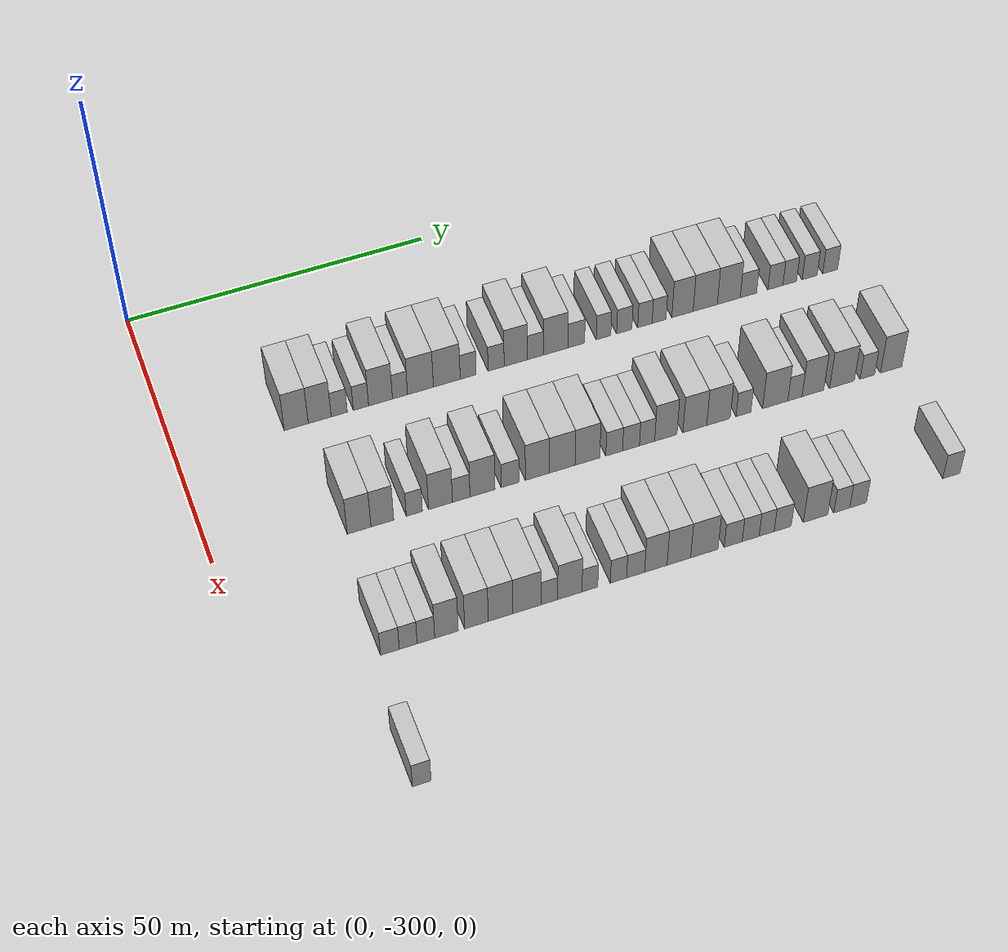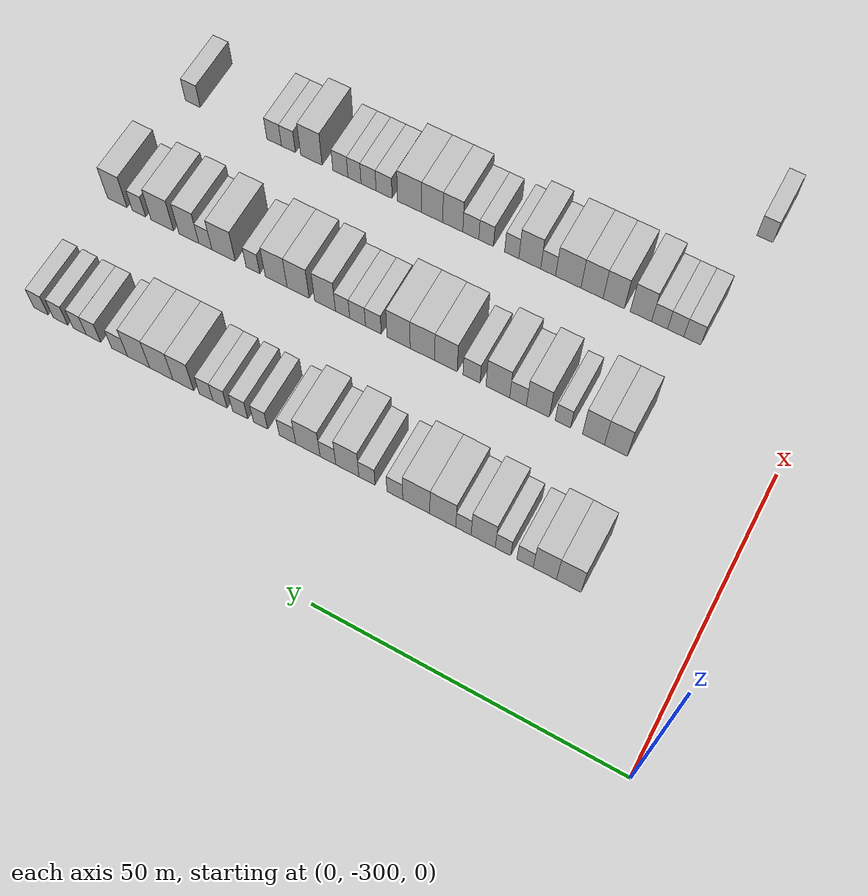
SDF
<sdf version="1.6">
 <world name="default">
  <model name="building_25">
   <static>1</static>
   <pose>25.0000 -280.7418 0 0.000000 0.000000 0.000000</pose>
   <link name="link">
    <pose>0 0 4.50 0 0 0</pose>
    <collision name="collision"><geometry><box><size>10.0000 3.9124 9.0000</size></box></geometry></collision>
    <visual name="visual">
     <cast_shadows>0</cast_shadows>
     <geometry><box><size>10.0000 3.9124 9.0000</size></box></geometry>
     <material>
      <script>
       <uri>model://HANNAS_wall/materials/scripts</uri>
       <uri>model://HANNAS_wall/materials/textures</uri>
       <name>vrc/HANNAS_wall</name>
      </script>
     </material>
    </visual>
   </link>
  </model>
  <model name="building_26">
   <static>1</static>
   <pose>25.0000 -276.9151 0 0.000000 0.000000 0.000000</pose>
   <link name="link">
    <pose>0 0 4.50 0 0 0</pose>
    <collision name="collision"><geometry><box><size>10.0000 3.7411 9.0000</size></box></geometry></collision>
    <visual name="visual">
     <cast_shadows>0</cast_shadows>
     <geometry><box><size>10.0000 3.7411 9.0000</size></box></geometry>
     <material>
      <script>
       <uri>model://HANNAS_wall/materials/scripts</uri>
       <uri>model://HANNAS_wall/materials/textures</uri>
       <name>vrc/HANNAS_wall</name>
      </script>
     </material>
    </visual>
   </link>
  </model>
  <model name="building_27">
   <static>1</static>
   <pose>25.0000 -273.7296 0 0.000000 0.000000 0.000000</pose>
   <link name="link">
    <pose>0 0 3.00 0 0 0</pose>
    <collision name="collision"><geometry><box><size>10.0000 2.6299 6.0000</size></box></geometry></collision>
    <visual name="visual">
     <cast_shadows>0</cast_shadows>
     <geometry><box><size>10.0000 2.6299 6.0000</size></box></geometry>
     <material>
      <script>
       <uri>model://HANNAS_wall/materials/scripts</uri>
       <uri>model://HANNAS_wall/materials/textures</uri>
       <name>vrc/HANNAS_wall</name>
      </script>
     </material>
    </visual>
   </link>
  </model>
  <model name="building_28">
   <static>1</static>
   <pose>25.0000 -270.1575 0 0.000000 0.000000 0.000000</pose>
   <link name="link">
    <pose>0 0 3.00 0 0 0</pose>
    <collision name="collision"><geometry><box><size>10.0000 2.5143 6.0000</size></box></geometry></collision>
    <visual name="visual">
     <cast_shadows>0</cast_shadows>
     <geometry><box><size>10.0000 2.5143 6.0000</size></box></geometry>
     <material>
      <script>
       <uri>model://HANNAS_wall/materials/scripts</uri>
       <uri>model://HANNAS_wall/materials/textures</uri>
       <name>vrc/HANNAS_wall</name>
      </script>
     </material>
    </visual>
   </link>
  </model>
  <model name="building_29">
   <static>1</static>
   <pose>25.0000 -266.9307 0 0.000000 0.000000 0.000000</pose>
   <link name="link">
    <pose>0 0 4.50 0 0 0</pose>
    <collision name="collision"><geometry><box><size>10.0000 3.9392 9.0000</size></box></geometry></collision>
    <visual name="visual">
     <cast_shadows>0</cast_shadows>
     <geometry><box><size>10.0000 3.9392 9.0000</size></box></geometry>
     <material>
      <script>
       <uri>model://HANNAS_wall/materials/scripts</uri>
       <uri>model://HANNAS_wall/materials/textures</uri>
       <name>vrc/HANNAS_wall</name>
      </script>
     </material>
    </visual>
   </link>
  </model>
  <model name="building_30">
   <static>1</static>
   <pose>25.0000 -263.7088 0 0.000000 0.000000 0.000000</pose>
   <link name="link">
    <pose>0 0 3.00 0 0 0</pose>
    <collision name="collision"><geometry><box><size>10.0000 2.5048 6.0000</size></box></geometry></collision>
    <visual name="visual">
     <cast_shadows>0</cast_shadows>
     <geometry><box><size>10.0000 2.5048 6.0000</size></box></geometry>
     <material>
      <script>
       <uri>model://HANNAS_wall/materials/scripts</uri>
       <uri>model://HANNAS_wall/materials/textures</uri>
       <name>vrc/HANNAS_wall</name>
      </script>
     </material>
    </visual>
   </link>
  </model>
  <model name="building_31">
   <static>1</static>
   <pose>25.0000 -260.3058 0 0.000000 0.000000 0.000000</pose>
   <link name="link">
    <pose>0 0 4.50 0 0 0</pose>
    <collision name="collision"><geometry><box><size>10.0000 4.3012 9.0000</size></box></geometry></collision>
    <visual name="visual">
     <cast_shadows>0</cast_shadows>
     <geometry><box><size>10.0000 4.3012 9.0000</size></box></geometry>
     <material>
      <script>
       <uri>model://HANNAS_wall/materials/scripts</uri>
       <uri>model://HANNAS_wall/materials/textures</uri>
       <name>vrc/HANNAS_wall</name>
      </script>
     </material>
    </visual>
   </link>
  </model>
  <model name="building_32">
   <static>1</static>
   <pose>25.0000 -255.9137 0 0.000000 0.000000 0.000000</pose>
   <link name="link">
    <pose>0 0 4.50 0 0 0</pose>
    <collision name="collision"><geometry><box><size>10.0000 4.4830 9.0000</size></box></geometry></collision>
    <visual name="visual">
     <cast_shadows>0</cast_shadows>
     <geometry><box><size>10.0000 4.4830 9.0000</size></box></geometry>
     <material>
      <script>
       <uri>model://HANNAS_wall/materials/scripts</uri>
       <uri>model://HANNAS_wall/materials/textures</uri>
       <name>vrc/HANNAS_wall</name>
      </script>
     </material>
    </visual>
   </link>
  </model>
  <model name="building_33">
   <static>1</static>
   <pose>25.0000 -252.3384 0 0.000000 0.000000 0.000000</pose>
   <link name="link">
    <pose>0 0 3.00 0 0 0</pose>
    <collision name="collision"><geometry><box><size>10.0000 2.6676 6.0000</size></box></geometry></collision>
    <visual name="visual">
     <cast_shadows>0</cast_shadows>
     <geometry><box><size>10.0000 2.6676 6.0000</size></box></geometry>
     <material>
      <script>
       <uri>model://HANNAS_wall/materials/scripts</uri>
       <uri>model://HANNAS_wall/materials/textures</uri>
       <name>vrc/HANNAS_wall</name>
      </script>
     </material>
    </visual>
   </link>
  </model>
  <model name="building_34">
   <static>1</static>
   <pose>25.0000 -247.6434 0 0.000000 0.000000 0.000000</pose>
   <link name="link">
    <pose>0 0 3.00 0 0 0</pose>
    <collision name="collision"><geometry><box><size>10.0000 2.7224 6.0000</size></box></geometry></collision>
    <visual name="visual">
     <cast_shadows>0</cast_shadows>
     <geometry><box><size>10.0000 2.7224 6.0000</size></box></geometry>
     <material>
      <script>
       <uri>model://HANNAS_wall/materials/scripts</uri>
       <uri>model://HANNAS_wall/materials/textures</uri>
       <name>vrc/HANNAS_wall</name>
      </script>
     </material>
    </visual>
   </link>
  </model>
  <model name="building_35">
   <static>1</static>
   <pose>25.0000 -244.3113 0 0.000000 0.000000 0.000000</pose>
   <link name="link">
    <pose>0 0 4.50 0 0 0</pose>
    <collision name="collision"><geometry><box><size>10.0000 3.9418 9.0000</size></box></geometry></collision>
    <visual name="visual">
     <cast_shadows>0</cast_shadows>
     <geometry><box><size>10.0000 3.9418 9.0000</size></box></geometry>
     <material>
      <script>
       <uri>model://HANNAS_wall/materials/scripts</uri>
       <uri>model://HANNAS_wall/materials/textures</uri>
       <name>vrc/HANNAS_wall</name>
      </script>
     </material>
    </visual>
   </link>
  </model>
  <model name="building_36">
   <static>1</static>
   <pose>25.0000 -240.9997 0 0.000000 0.000000 0.000000</pose>
   <link name="link">
    <pose>0 0 3.00 0 0 0</pose>
    <collision name="collision"><geometry><box><size>10.0000 2.6813 6.0000</size></box></geometry></collision>
    <visual name="visual">
     <cast_shadows>0</cast_shadows>
     <geometry><box><size>10.0000 2.6813 6.0000</size></box></geometry>
     <material>
      <script>
       <uri>model://HANNAS_wall/materials/scripts</uri>
       <uri>model://HANNAS_wall/materials/textures</uri>
       <name>vrc/HANNAS_wall</name>
      </script>
     </material>
    </visual>
   </link>
  </model>
  <model name="building_37">
   <static>1</static>
   <pose>25.0000 -237.5609 0 0.000000 0.000000 0.000000</pose>
   <link name="link">
    <pose>0 0 4.50 0 0 0</pose>
    <collision name="collision"><geometry><box><size>10.0000 4.1962 9.0000</size></box></geometry></collision>
    <visual name="visual">
     <cast_shadows>0</cast_shadows>
     <geometry><box><size>10.0000 4.1962 9.0000</size></box></geometry>
     <material>
      <script>
       <uri>model://HANNAS_wall/materials/scripts</uri>
       <uri>model://HANNAS_wall/materials/textures</uri>
       <name>vrc/HANNAS_wall</name>
      </script>
     </material>
    </visual>
   </link>
  </model>
  <model name="building_38">
   <static>1</static>
   <pose>25.0000 -234.0319 0 0.000000 0.000000 0.000000</pose>
   <link name="link">
    <pose>0 0 3.00 0 0 0</pose>
    <collision name="collision"><geometry><box><size>10.0000 2.8618 6.0000</size></box></geometry></collision>
    <visual name="visual">
     <cast_shadows>0</cast_shadows>
     <geometry><box><size>10.0000 2.8618 6.0000</size></box></geometry>
     <material>
      <script>
       <uri>model://HANNAS_wall/materials/scripts</uri>
       <uri>model://HANNAS_wall/materials/textures</uri>
       <name>vrc/HANNAS_wall</name>
      </script>
     </material>
    </visual>
   </link>
  </model>
  <model name="building_39">
   <static>1</static>
   <pose>25.0000 -229.3472 0 0.000000 0.000000 0.000000</pose>
   <link name="link">
    <pose>0 0 3.00 0 0 0</pose>
    <collision name="collision"><geometry><box><size>10.0000 2.5078 6.0000</size></box></geometry></collision>
    <visual name="visual">
     <cast_shadows>0</cast_shadows>
     <geometry><box><size>10.0000 2.5078 6.0000</size></box></geometry>
     <material>
      <script>
       <uri>model://HANNAS_wall/materials/scripts</uri>
       <uri>model://HANNAS_wall/materials/textures</uri>
       <name>vrc/HANNAS_wall</name>
      </script>
     </material>
    </visual>
   </link>
  </model>
  <model name="building_40">
   <static>1</static>
   <pose>25.0000 -225.7696 0 0.000000 0.000000 0.000000</pose>
   <link name="link">
    <pose>0 0 3.00 0 0 0</pose>
    <collision name="collision"><geometry><box><size>10.0000 2.6474 6.0000</size></box></geometry></collision>
    <visual name="visual">
     <cast_shadows>0</cast_shadows>
     <geometry><box><size>10.0000 2.6474 6.0000</size></box></geometry>
     <material>
      <script>
       <uri>model://HANNAS_wall/materials/scripts</uri>
       <uri>model://HANNAS_wall/materials/textures</uri>
       <name>vrc/HANNAS_wall</name>
      </script>
     </material>
    </visual>
   </link>
  </model>
  <model name="building_41">
   <static>1</static>
   <pose>25.0000 -222.1963 0 0.000000 0.000000 0.000000</pose>
   <link name="link">
    <pose>0 0 3.00 0 0 0</pose>
    <collision name="collision"><geometry><box><size>10.0000 2.4990 6.0000</size></box></geometry></collision>
    <visual name="visual">
     <cast_shadows>0</cast_shadows>
     <geometry><box><size>10.0000 2.4990 6.0000</size></box></geometry>
     <material>
      <script>
       <uri>model://HANNAS_wall/materials/scripts</uri>
       <uri>model://HANNAS_wall/materials/textures</uri>
       <name>vrc/HANNAS_wall</name>
      </script>
     </material>
    </visual>
   </link>
  </model>
  <model name="building_42">
   <static>1</static>
   <pose>25.0000 -219.7313 0 0.000000 0.000000 0.000000</pose>
   <link name="link">
    <pose>0 0 3.00 0 0 0</pose>
    <collision name="collision"><geometry><box><size>10.0000 2.4311 6.0000</size></box></geometry></collision>
    <visual name="visual">
     <cast_shadows>0</cast_shadows>
     <geometry><box><size>10.0000 2.4311 6.0000</size></box></geometry>
     <material>
      <script>
       <uri>model://HANNAS_wall/materials/scripts</uri>
       <uri>model://HANNAS_wall/materials/textures</uri>
       <name>vrc/HANNAS_wall</name>
      </script>
     </material>
    </visual>
   </link>
  </model>
  <model name="building_43">
   <static>1</static>
   <pose>25.0000 -215.6574 0 0.000000 0.000000 0.000000</pose>
   <link name="link">
    <pose>0 0 4.50 0 0 0</pose>
    <collision name="collision"><geometry><box><size>10.0000 3.7165 9.0000</size></box></geometry></collision>
    <visual name="visual">
     <cast_shadows>0</cast_shadows>
     <geometry><box><size>10.0000 3.7165 9.0000</size></box></geometry>
     <material>
      <script>
       <uri>model://HANNAS_wall/materials/scripts</uri>
       <uri>model://HANNAS_wall/materials/textures</uri>
       <name>vrc/HANNAS_wall</name>
      </script>
     </material>
    </visual>
   </link>
  </model>
  <model name="building_44">
   <static>1</static>
   <pose>25.0000 -211.6798 0 0.000000 0.000000 0.000000</pose>
   <link name="link">
    <pose>0 0 4.50 0 0 0</pose>
    <collision name="collision"><geometry><box><size>10.0000 4.2387 9.0000</size></box></geometry></collision>
    <visual name="visual">
     <cast_shadows>0</cast_shadows>
     <geometry><box><size>10.0000 4.2387 9.0000</size></box></geometry>
     <material>
      <script>
       <uri>model://HANNAS_wall/materials/scripts</uri>
       <uri>model://HANNAS_wall/materials/textures</uri>
       <name>vrc/HANNAS_wall</name>
      </script>
     </material>
    </visual>
   </link>
  </model>
  <model name="building_45">
   <static>1</static>
   <pose>25.0000 -207.5407 0 0.000000 0.000000 0.000000</pose>
   <link name="link">
    <pose>0 0 4.50 0 0 0</pose>
    <collision name="collision"><geometry><box><size>10.0000 4.0395 9.0000</size></box></geometry></collision>
    <visual name="visual">
     <cast_shadows>0</cast_shadows>
     <geometry><box><size>10.0000 4.0395 9.0000</size></box></geometry>
     <material>
      <script>
       <uri>model://HANNAS_wall/materials/scripts</uri>
       <uri>model://HANNAS_wall/materials/textures</uri>
       <name>vrc/HANNAS_wall</name>
      </script>
     </material>
    </visual>
   </link>
  </model>
  <model name="building_46">
   <static>1</static>
   <pose>25.0000 -204.0772 0 0.000000 0.000000 0.000000</pose>
   <link name="link">
    <pose>0 0 3.00 0 0 0</pose>
    <collision name="collision"><geometry><box><size>10.0000 2.8876 6.0000</size></box></geometry></collision>
    <visual name="visual">
     <cast_shadows>0</cast_shadows>
     <geometry><box><size>10.0000 2.8876 6.0000</size></box></geometry>
     <material>
      <script>
       <uri>model://HANNAS_wall/materials/scripts</uri>
       <uri>model://HANNAS_wall/materials/textures</uri>
       <name>vrc/HANNAS_wall</name>
      </script>
     </material>
    </visual>
   </link>
  </model>
  <model name="building_47">
   <static>1</static>
   <pose>25.0000 -199.2927 0 0.000000 0.000000 0.000000</pose>
   <link name="link">
    <pose>0 0 3.00 0 0 0</pose>
    <collision name="collision"><geometry><box><size>10.0000 2.6813 6.0000</size></box></geometry></collision>
    <visual name="visual">
     <cast_shadows>0</cast_shadows>
     <geometry><box><size>10.0000 2.6813 6.0000</size></box></geometry>
     <material>
      <script>
       <uri>model://HANNAS_wall/materials/scripts</uri>
       <uri>model://HANNAS_wall/materials/textures</uri>
       <name>vrc/HANNAS_wall</name>
      </script>
     </material>
    </visual>
   </link>
  </model>
  <model name="building_48">
   <static>1</static>
   <pose>25.0000 -196.7364 0 0.000000 0.000000 0.000000</pose>
   <link name="link">
    <pose>0 0 3.00 0 0 0</pose>
    <collision name="collision"><geometry><box><size>10.0000 2.4314 6.0000</size></box></geometry></collision>
    <visual name="visual">
     <cast_shadows>0</cast_shadows>
     <geometry><box><size>10.0000 2.4314 6.0000</size></box></geometry>
     <material>
      <script>
       <uri>model://HANNAS_wall/materials/scripts</uri>
       <uri>model://HANNAS_wall/materials/textures</uri>
       <name>vrc/HANNAS_wall</name>
      </script>
     </material>
    </visual>
   </link>
  </model>
  <model name="building_49">
   <static>1</static>
   <pose>25.0000 -193.1813 0 0.000000 0.000000 0.000000</pose>
   <link name="link">
    <pose>0 0 3.00 0 0 0</pose>
    <collision name="collision"><geometry><box><size>10.0000 2.6788 6.0000</size></box></geometry></collision>
    <visual name="visual">
     <cast_shadows>0</cast_shadows>
     <geometry><box><size>10.0000 2.6788 6.0000</size></box></geometry>
     <material>
      <script>
       <uri>model://HANNAS_wall/materials/scripts</uri>
       <uri>model://HANNAS_wall/materials/textures</uri>
       <name>vrc/HANNAS_wall</name>
      </script>
     </material>
    </visual>
   </link>
  </model>
  <model name="building_50">
   <static>1</static>
   <pose>25.0000 -189.5061 0 0.000000 0.000000 0.000000</pose>
   <link name="link">
    <pose>0 0 3.00 0 0 0</pose>
    <collision name="collision"><geometry><box><size>10.0000 2.6715 6.0000</size></box></geometry></collision>
    <visual name="visual">
     <cast_shadows>0</cast_shadows>
     <geometry><box><size>10.0000 2.6715 6.0000</size></box></geometry>
     <material>
      <script>
       <uri>model://HANNAS_wall/materials/scripts</uri>
       <uri>model://HANNAS_wall/materials/textures</uri>
       <name>vrc/HANNAS_wall</name>
      </script>
     </material>
    </visual>
   </link>
  </model>
  <model name="building_224">
   <static>1</static>
   <pose>47.0000 -277.5695 0 0.000000 0.000000 0.000000</pose>
   <link name="link">
    <pose>0 0 4.50 0 0 0</pose>
    <collision name="collision"><geometry><box><size>10.0000 3.7724 9.0000</size></box></geometry></collision>
    <visual name="visual">
     <cast_shadows>0</cast_shadows>
     <geometry><box><size>10.0000 3.7724 9.0000</size></box></geometry>
     <material>
      <script>
       <uri>model://HANNAS_wall/materials/scripts</uri>
       <uri>model://HANNAS_wall/materials/textures</uri>
       <name>vrc/HANNAS_wall</name>
      </script>
     </material>
    </visual>
   </link>
  </model>
  <model name="building_225">
   <static>1</static>
   <pose>47.0000 -273.8723 0 0.000000 0.000000 0.000000</pose>
   <link name="link">
    <pose>0 0 4.50 0 0 0</pose>
    <collision name="collision"><geometry><box><size>10.0000 3.6220 9.0000</size></box></geometry></collision>
    <visual name="visual">
     <cast_shadows>0</cast_shadows>
     <geometry><box><size>10.0000 3.6220 9.0000</size></box></geometry>
     <material>
      <script>
       <uri>model://HANNAS_wall/materials/scripts</uri>
       <uri>model://HANNAS_wall/materials/textures</uri>
       <name>vrc/HANNAS_wall</name>
      </script>
     </material>
    </visual>
   </link>
  </model>
  <model name="building_226">
   <static>1</static>
   <pose>47.0000 -268.7756 0 0.000000 0.000000 0.000000</pose>
   <link name="link">
    <pose>0 0 3.00 0 0 0</pose>
    <collision name="collision"><geometry><box><size>10.0000 2.5712 6.0000</size></box></geometry></collision>
    <visual name="visual">
     <cast_shadows>0</cast_shadows>
     <geometry><box><size>10.0000 2.5712 6.0000</size></box></geometry>
     <material>
      <script>
       <uri>model://HANNAS_wall/materials/scripts</uri>
       <uri>model://HANNAS_wall/materials/textures</uri>
       <name>vrc/HANNAS_wall</name>
      </script>
     </material>
    </visual>
   </link>
  </model>
  <model name="building_227">
   <static>1</static>
   <pose>47.0000 -264.5664 0 0.000000 0.000000 0.000000</pose>
   <link name="link">
    <pose>0 0 4.50 0 0 0</pose>
    <collision name="collision"><geometry><box><size>10.0000 3.8473 9.0000</size></box></geometry></collision>
    <visual name="visual">
     <cast_shadows>0</cast_shadows>
     <geometry><box><size>10.0000 3.8473 9.0000</size></box></geometry>
     <material>
      <script>
       <uri>model://HANNAS_wall/materials/scripts</uri>
       <uri>model://HANNAS_wall/materials/textures</uri>
       <name>vrc/HANNAS_wall</name>
      </script>
     </material>
    </visual>
   </link>
  </model>
  <model name="building_228">
   <static>1</static>
   <pose>47.0000 -261.2281 0 0.000000 0.000000 0.000000</pose>
   <link name="link">
    <pose>0 0 3.00 0 0 0</pose>
    <collision name="collision"><geometry><box><size>10.0000 2.8293 6.0000</size></box></geometry></collision>
    <visual name="visual">
     <cast_shadows>0</cast_shadows>
     <geometry><box><size>10.0000 2.8293 6.0000</size></box></geometry>
     <material>
      <script>
       <uri>model://HANNAS_wall/materials/scripts</uri>
       <uri>model://HANNAS_wall/materials/textures</uri>
       <name>vrc/HANNAS_wall</name>
      </script>
     </material>
    </visual>
   </link>
  </model>
  <model name="building_229">
   <static>1</static>
   <pose>47.0000 -257.7891 0 0.000000 0.000000 0.000000</pose>
   <link name="link">
    <pose>0 0 4.50 0 0 0</pose>
    <collision name="collision"><geometry><box><size>10.0000 4.0487 9.0000</size></box></geometry></collision>
    <visual name="visual">
     <cast_shadows>0</cast_shadows>
     <geometry><box><size>10.0000 4.0487 9.0000</size></box></geometry>
     <material>
      <script>
       <uri>model://HANNAS_wall/materials/scripts</uri>
       <uri>model://HANNAS_wall/materials/textures</uri>
       <name>vrc/HANNAS_wall</name>
      </script>
     </material>
    </visual>
   </link>
  </model>
  <model name="building_230">
   <static>1</static>
   <pose>47.0000 -253.2956 0 0.000000 0.000000 0.000000</pose>
   <link name="link">
    <pose>0 0 3.00 0 0 0</pose>
    <collision name="collision"><geometry><box><size>10.0000 2.9381 6.0000</size></box></geometry></collision>
    <visual name="visual">
     <cast_shadows>0</cast_shadows>
     <geometry><box><size>10.0000 2.9381 6.0000</size></box></geometry>
     <material>
      <script>
       <uri>model://HANNAS_wall/materials/scripts</uri>
       <uri>model://HANNAS_wall/materials/textures</uri>
       <name>vrc/HANNAS_wall</name>
      </script>
     </material>
    </visual>
   </link>
  </model>
  <model name="building_231">
   <static>1</static>
   <pose>47.0000 -248.8846 0 0.000000 0.000000 0.000000</pose>
   <link name="link">
    <pose>0 0 4.50 0 0 0</pose>
    <collision name="collision"><geometry><box><size>10.0000 3.8839 9.0000</size></box></geometry></collision>
    <visual name="visual">
     <cast_shadows>0</cast_shadows>
     <geometry><box><size>10.0000 3.8839 9.0000</size></box></geometry>
     <material>
      <script>
       <uri>model://HANNAS_wall/materials/scripts</uri>
       <uri>model://HANNAS_wall/materials/textures</uri>
       <name>vrc/HANNAS_wall</name>
      </script>
     </material>
    </visual>
   </link>
  </model>
  <model name="building_232">
   <static>1</static>
   <pose>47.0000 -244.8045 0 0.000000 0.000000 0.000000</pose>
   <link name="link">
    <pose>0 0 4.50 0 0 0</pose>
    <collision name="collision"><geometry><box><size>10.0000 4.2763 9.0000</size></box></geometry></collision>
    <visual name="visual">
     <cast_shadows>0</cast_shadows>
     <geometry><box><size>10.0000 4.2763 9.0000</size></box></geometry>
     <material>
      <script>
       <uri>model://HANNAS_wall/materials/scripts</uri>
       <uri>model://HANNAS_wall/materials/textures</uri>
       <name>vrc/HANNAS_wall</name>
      </script>
     </material>
    </visual>
   </link>
  </model>
  <model name="building_233">
   <static>1</static>
   <pose>47.0000 -240.6262 0 0.000000 0.000000 0.000000</pose>
   <link name="link">
    <pose>0 0 4.50 0 0 0</pose>
    <collision name="collision"><geometry><box><size>10.0000 4.0802 9.0000</size></box></geometry></collision>
    <visual name="visual">
     <cast_shadows>0</cast_shadows>
     <geometry><box><size>10.0000 4.0802 9.0000</size></box></geometry>
     <material>
      <script>
       <uri>model://HANNAS_wall/materials/scripts</uri>
       <uri>model://HANNAS_wall/materials/textures</uri>
       <name>vrc/HANNAS_wall</name>
      </script>
     </material>
    </visual>
   </link>
  </model>
  <model name="building_234">
   <static>1</static>
   <pose>47.0000 -236.1912 0 0.000000 0.000000 0.000000</pose>
   <link name="link">
    <pose>0 0 3.00 0 0 0</pose>
    <collision name="collision"><geometry><box><size>10.0000 2.7898 6.0000</size></box></geometry></collision>
    <visual name="visual">
     <cast_shadows>0</cast_shadows>
     <geometry><box><size>10.0000 2.7898 6.0000</size></box></geometry>
     <material>
      <script>
       <uri>model://HANNAS_wall/materials/scripts</uri>
       <uri>model://HANNAS_wall/materials/textures</uri>
       <name>vrc/HANNAS_wall</name>
      </script>
     </material>
    </visual>
   </link>
  </model>
  <model name="building_235">
   <static>1</static>
   <pose>47.0000 -233.3911 0 0.000000 0.000000 0.000000</pose>
   <link name="link">
    <pose>0 0 3.00 0 0 0</pose>
    <collision name="collision"><geometry><box><size>10.0000 2.8104 6.0000</size></box></geometry></collision>
    <visual name="visual">
     <cast_shadows>0</cast_shadows>
     <geometry><box><size>10.0000 2.8104 6.0000</size></box></geometry>
     <material>
      <script>
       <uri>model://HANNAS_wall/materials/scripts</uri>
       <uri>model://HANNAS_wall/materials/textures</uri>
       <name>vrc/HANNAS_wall</name>
      </script>
     </material>
    </visual>
   </link>
  </model>
  <model name="building_236">
   <static>1</static>
   <pose>47.0000 -230.7117 0 0.000000 0.000000 0.000000</pose>
   <link name="link">
    <pose>0 0 3.00 0 0 0</pose>
    <collision name="collision"><geometry><box><size>10.0000 2.5485 6.0000</size></box></geometry></collision>
    <visual name="visual">
     <cast_shadows>0</cast_shadows>
     <geometry><box><size>10.0000 2.5485 6.0000</size></box></geometry>
     <material>
      <script>
       <uri>model://HANNAS_wall/materials/scripts</uri>
       <uri>model://HANNAS_wall/materials/textures</uri>
       <name>vrc/HANNAS_wall</name>
      </script>
     </material>
    </visual>
   </link>
  </model>
  <model name="building_237">
   <static>1</static>
   <pose>47.0000 -227.5700 0 0.000000 0.000000 0.000000</pose>
   <link name="link">
    <pose>0 0 4.50 0 0 0</pose>
    <collision name="collision"><geometry><box><size>10.0000 3.7350 9.0000</size></box></geometry></collision>
    <visual name="visual">
     <cast_shadows>0</cast_shadows>
     <geometry><box><size>10.0000 3.7350 9.0000</size></box></geometry>
     <material>
      <script>
       <uri>model://HANNAS_wall/materials/scripts</uri>
       <uri>model://HANNAS_wall/materials/textures</uri>
       <name>vrc/HANNAS_wall</name>
      </script>
     </material>
    </visual>
   </link>
  </model>
  <model name="building_238">
   <static>1</static>
   <pose>47.0000 -222.6980 0 0.000000 0.000000 0.000000</pose>
   <link name="link">
    <pose>0 0 4.50 0 0 0</pose>
    <collision name="collision"><geometry><box><size>10.0000 4.0091 9.0000</size></box></geometry></collision>
    <visual name="visual">
     <cast_shadows>0</cast_shadows>
     <geometry><box><size>10.0000 4.0091 9.0000</size></box></geometry>
     <material>
      <script>
       <uri>model://HANNAS_wall/materials/scripts</uri>
       <uri>model://HANNAS_wall/materials/textures</uri>
       <name>vrc/HANNAS_wall</name>
      </script>
     </material>
    </visual>
   </link>
  </model>
  <model name="building_239">
   <static>1</static>
   <pose>47.0000 -218.7035 0 0.000000 0.000000 0.000000</pose>
   <link name="link">
    <pose>0 0 4.50 0 0 0</pose>
    <collision name="collision"><geometry><box><size>10.0000 3.9798 9.0000</size></box></geometry></collision>
    <visual name="visual">
     <cast_shadows>0</cast_shadows>
     <geometry><box><size>10.0000 3.9798 9.0000</size></box></geometry>
     <material>
      <script>
       <uri>model://HANNAS_wall/materials/scripts</uri>
       <uri>model://HANNAS_wall/materials/textures</uri>
       <name>vrc/HANNAS_wall</name>
      </script>
     </material>
    </visual>
   </link>
  </model>
  <model name="building_240">
   <static>1</static>
   <pose>47.0000 -214.4527 0 0.000000 0.000000 0.000000</pose>
   <link name="link">
    <pose>0 0 3.00 0 0 0</pose>
    <collision name="collision"><geometry><box><size>10.0000 2.5217 6.0000</size></box></geometry></collision>
    <visual name="visual">
     <cast_shadows>0</cast_shadows>
     <geometry><box><size>10.0000 2.5217 6.0000</size></box></geometry>
     <material>
      <script>
       <uri>model://HANNAS_wall/materials/scripts</uri>
       <uri>model://HANNAS_wall/materials/textures</uri>
       <name>vrc/HANNAS_wall</name>
      </script>
     </material>
    </visual>
   </link>
  </model>
  <model name="building_241">
   <static>1</static>
   <pose>47.0000 -209.0318 0 0.000000 0.000000 0.000000</pose>
   <link name="link">
    <pose>0 0 4.50 0 0 0</pose>
    <collision name="collision"><geometry><box><size>10.0000 4.3202 9.0000</size></box></geometry></collision>
    <visual name="visual">
     <cast_shadows>0</cast_shadows>
     <geometry><box><size>10.0000 4.3202 9.0000</size></box></geometry>
     <material>
      <script>
       <uri>model://HANNAS_wall/materials/scripts</uri>
       <uri>model://HANNAS_wall/materials/textures</uri>
       <name>vrc/HANNAS_wall</name>
      </script>
     </material>
    </visual>
   </link>
  </model>
  <model name="building_242">
   <static>1</static>
   <pose>47.0000 -205.6501 0 0.000000 0.000000 0.000000</pose>
   <link name="link">
    <pose>0 0 3.00 0 0 0</pose>
    <collision name="collision"><geometry><box><size>10.0000 2.4431 6.0000</size></box></geometry></collision>
    <visual name="visual">
     <cast_shadows>0</cast_shadows>
     <geometry><box><size>10.0000 2.4431 6.0000</size></box></geometry>
     <material>
      <script>
       <uri>model://HANNAS_wall/materials/scripts</uri>
       <uri>model://HANNAS_wall/materials/textures</uri>
       <name>vrc/HANNAS_wall</name>
      </script>
     </material>
    </visual>
   </link>
  </model>
  <model name="building_243">
   <static>1</static>
   <pose>47.0000 -202.5567 0 0.000000 0.000000 0.000000</pose>
   <link name="link">
    <pose>0 0 4.50 0 0 0</pose>
    <collision name="collision"><geometry><box><size>10.0000 3.7436 9.0000</size></box></geometry></collision>
    <visual name="visual">
     <cast_shadows>0</cast_shadows>
     <geometry><box><size>10.0000 3.7436 9.0000</size></box></geometry>
     <material>
      <script>
       <uri>model://HANNAS_wall/materials/scripts</uri>
       <uri>model://HANNAS_wall/materials/textures</uri>
       <name>vrc/HANNAS_wall</name>
      </script>
     </material>
    </visual>
   </link>
  </model>
  <model name="building_244">
   <static>1</static>
   <pose>47.0000 -197.5320 0 0.000000 0.000000 0.000000</pose>
   <link name="link">
    <pose>0 0 4.50 0 0 0</pose>
    <collision name="collision"><geometry><box><size>10.0000 4.3058 9.0000</size></box></geometry></collision>
    <visual name="visual">
     <cast_shadows>0</cast_shadows>
     <geometry><box><size>10.0000 4.3058 9.0000</size></box></geometry>
     <material>
      <script>
       <uri>model://HANNAS_wall/materials/scripts</uri>
       <uri>model://HANNAS_wall/materials/textures</uri>
       <name>vrc/HANNAS_wall</name>
      </script>
     </material>
    </visual>
   </link>
  </model>
  <model name="building_245">
   <static>1</static>
   <pose>47.0000 -193.1087 0 0.000000 0.000000 0.000000</pose>
   <link name="link">
    <pose>0 0 3.00 0 0 0</pose>
    <collision name="collision"><geometry><box><size>10.0000 2.5409 6.0000</size></box></geometry></collision>
    <visual name="visual">
     <cast_shadows>0</cast_shadows>
     <geometry><box><size>10.0000 2.5409 6.0000</size></box></geometry>
     <material>
      <script>
       <uri>model://HANNAS_wall/materials/scripts</uri>
       <uri>model://HANNAS_wall/materials/textures</uri>
       <name>vrc/HANNAS_wall</name>
      </script>
     </material>
    </visual>
   </link>
  </model>
  <model name="building_246">
   <static>1</static>
   <pose>47.0000 -188.9612 0 0.000000 0.000000 0.000000</pose>
   <link name="link">
    <pose>0 0 4.50 0 0 0</pose>
    <collision name="collision"><geometry><box><size>10.0000 3.7543 9.0000</size></box></geometry></collision>
    <visual name="visual">
     <cast_shadows>0</cast_shadows>
     <geometry><box><size>10.0000 3.7543 9.0000</size></box></geometry>
     <material>
      <script>
       <uri>model://HANNAS_wall/materials/scripts</uri>
       <uri>model://HANNAS_wall/materials/textures</uri>
       <name>vrc/HANNAS_wall</name>
      </script>
     </material>
    </visual>
   </link>
  </model>
  <model name="building_417">
   <static>1</static>
   <pose>69.0000 -279.9622 0 0.000000 0.000000 0.000000</pose>
   <link name="link">
    <pose>0 0 3.00 0 0 0</pose>
    <collision name="collision"><geometry><box><size>10.0000 2.8836 6.0000</size></box></geometry></collision>
    <visual name="visual">
     <cast_shadows>0</cast_shadows>
     <geometry><box><size>10.0000 2.8836 6.0000</size></box></geometry>
     <material>
      <script>
       <uri>model://HANNAS_wall/materials/scripts</uri>
       <uri>model://HANNAS_wall/materials/textures</uri>
       <name>vrc/HANNAS_wall</name>
      </script>
     </material>
    </visual>
   </link>
  </model>
  <model name="building_418">
   <static>1</static>
   <pose>69.0000 -277.1437 0 0.000000 0.000000 0.000000</pose>
   <link name="link">
    <pose>0 0 3.00 0 0 0</pose>
    <collision name="collision"><geometry><box><size>10.0000 2.7533 6.0000</size></box></geometry></collision>
    <visual name="visual">
     <cast_shadows>0</cast_shadows>
     <geometry><box><size>10.0000 2.7533 6.0000</size></box></geometry>
     <material>
      <script>
       <uri>model://HANNAS_wall/materials/scripts</uri>
       <uri>model://HANNAS_wall/materials/textures</uri>
       <name>vrc/HANNAS_wall</name>
      </script>
     </material>
    </visual>
   </link>
  </model>
  <model name="building_419">
   <static>1</static>
   <pose>69.0000 -274.4152 0 0.000000 0.000000 0.000000</pose>
   <link name="link">
    <pose>0 0 3.00 0 0 0</pose>
    <collision name="collision"><geometry><box><size>10.0000 2.7038 6.0000</size></box></geometry></collision>
    <visual name="visual">
     <cast_shadows>0</cast_shadows>
     <geometry><box><size>10.0000 2.7038 6.0000</size></box></geometry>
     <material>
      <script>
       <uri>model://HANNAS_wall/materials/scripts</uri>
       <uri>model://HANNAS_wall/materials/textures</uri>
       <name>vrc/HANNAS_wall</name>
      </script>
     </material>
    </visual>
   </link>
  </model>
  <model name="building_420">
   <static>1</static>
   <pose>69.0000 -271.2432 0 0.000000 0.000000 0.000000</pose>
   <link name="link">
    <pose>0 0 4.50 0 0 0</pose>
    <collision name="collision"><geometry><box><size>10.0000 3.6402 9.0000</size></box></geometry></collision>
    <visual name="visual">
     <cast_shadows>0</cast_shadows>
     <geometry><box><size>10.0000 3.6402 9.0000</size></box></geometry>
     <material>
      <script>
       <uri>model://HANNAS_wall/materials/scripts</uri>
       <uri>model://HANNAS_wall/materials/textures</uri>
       <name>vrc/HANNAS_wall</name>
      </script>
     </material>
    </visual>
   </link>
  </model>
  <model name="building_421">
   <static>1</static>
   <pose>69.0000 -266.5874 0 0.000000 0.000000 0.000000</pose>
   <link name="link">
    <pose>0 0 4.50 0 0 0</pose>
    <collision name="collision"><geometry><box><size>10.0000 3.6714 9.0000</size></box></geometry></collision>
    <visual name="visual">
     <cast_shadows>0</cast_shadows>
     <geometry><box><size>10.0000 3.6714 9.0000</size></box></geometry>
     <material>
      <script>
       <uri>model://HANNAS_wall/materials/scripts</uri>
       <uri>model://HANNAS_wall/materials/textures</uri>
       <name>vrc/HANNAS_wall</name>
      </script>
     </material>
    </visual>
   </link>
  </model>
  <model name="building_422">
   <static>1</static>
   <pose>69.0000 -262.8373 0 0.000000 0.000000 0.000000</pose>
   <link name="link">
    <pose>0 0 4.50 0 0 0</pose>
    <collision name="collision"><geometry><box><size>10.0000 3.8289 9.0000</size></box></geometry></collision>
    <visual name="visual">
     <cast_shadows>0</cast_shadows>
     <geometry><box><size>10.0000 3.8289 9.0000</size></box></geometry>
     <material>
      <script>
       <uri>model://HANNAS_wall/materials/scripts</uri>
       <uri>model://HANNAS_wall/materials/textures</uri>
       <name>vrc/HANNAS_wall</name>
      </script>
     </material>
    </visual>
   </link>
  </model>
  <model name="building_423">
   <static>1</static>
   <pose>69.0000 -258.7008 0 0.000000 0.000000 0.000000</pose>
   <link name="link">
    <pose>0 0 4.50 0 0 0</pose>
    <collision name="collision"><geometry><box><size>10.0000 4.4440 9.0000</size></box></geometry></collision>
    <visual name="visual">
     <cast_shadows>0</cast_shadows>
     <geometry><box><size>10.0000 4.4440 9.0000</size></box></geometry>
     <material>
      <script>
       <uri>model://HANNAS_wall/materials/scripts</uri>
       <uri>model://HANNAS_wall/materials/textures</uri>
       <name>vrc/HANNAS_wall</name>
      </script>
     </material>
    </visual>
   </link>
  </model>
  <model name="building_424">
   <static>1</static>
   <pose>69.0000 -255.1727 0 0.000000 0.000000 0.000000</pose>
   <link name="link">
    <pose>0 0 3.00 0 0 0</pose>
    <collision name="collision"><geometry><box><size>10.0000 2.6123 6.0000</size></box></geometry></collision>
    <visual name="visual">
     <cast_shadows>0</cast_shadows>
     <geometry><box><size>10.0000 2.6123 6.0000</size></box></geometry>
     <material>
      <script>
       <uri>model://HANNAS_wall/materials/scripts</uri>
       <uri>model://HANNAS_wall/materials/textures</uri>
       <name>vrc/HANNAS_wall</name>
      </script>
     </material>
    </visual>
   </link>
  </model>
  <model name="building_425">
   <static>1</static>
   <pose>69.0000 -251.9367 0 0.000000 0.000000 0.000000</pose>
   <link name="link">
    <pose>0 0 4.50 0 0 0</pose>
    <collision name="collision"><geometry><box><size>10.0000 3.8597 9.0000</size></box></geometry></collision>
    <visual name="visual">
     <cast_shadows>0</cast_shadows>
     <geometry><box><size>10.0000 3.8597 9.0000</size></box></geometry>
     <material>
      <script>
       <uri>model://HANNAS_wall/materials/scripts</uri>
       <uri>model://HANNAS_wall/materials/textures</uri>
       <name>vrc/HANNAS_wall</name>
      </script>
     </material>
    </visual>
   </link>
  </model>
  <model name="building_426">
   <static>1</static>
   <pose>69.0000 -248.7509 0 0.000000 0.000000 0.000000</pose>
   <link name="link">
    <pose>0 0 3.00 0 0 0</pose>
    <collision name="collision"><geometry><box><size>10.0000 2.5118 6.0000</size></box></geometry></collision>
    <visual name="visual">
     <cast_shadows>0</cast_shadows>
     <geometry><box><size>10.0000 2.5118 6.0000</size></box></geometry>
     <material>
      <script>
       <uri>model://HANNAS_wall/materials/scripts</uri>
       <uri>model://HANNAS_wall/materials/textures</uri>
       <name>vrc/HANNAS_wall</name>
      </script>
     </material>
    </visual>
   </link>
  </model>
  <model name="building_427">
   <static>1</static>
   <pose>69.0000 -244.1883 0 0.000000 0.000000 0.000000</pose>
   <link name="link">
    <pose>0 0 3.00 0 0 0</pose>
    <collision name="collision"><geometry><box><size>10.0000 2.6135 6.0000</size></box></geometry></collision>
    <visual name="visual">
     <cast_shadows>0</cast_shadows>
     <geometry><box><size>10.0000 2.6135 6.0000</size></box></geometry>
     <material>
      <script>
       <uri>model://HANNAS_wall/materials/scripts</uri>
       <uri>model://HANNAS_wall/materials/textures</uri>
       <name>vrc/HANNAS_wall</name>
      </script>
     </material>
    </visual>
   </link>
  </model>
  <model name="building_428">
   <static>1</static>
   <pose>69.0000 -241.4427 0 0.000000 0.000000 0.000000</pose>
   <link name="link">
    <pose>0 0 3.00 0 0 0</pose>
    <collision name="collision"><geometry><box><size>10.0000 2.8779 6.0000</size></box></geometry></collision>
    <visual name="visual">
     <cast_shadows>0</cast_shadows>
     <geometry><box><size>10.0000 2.8779 6.0000</size></box></geometry>
     <material>
      <script>
       <uri>model://HANNAS_wall/materials/scripts</uri>
       <uri>model://HANNAS_wall/materials/textures</uri>
       <name>vrc/HANNAS_wall</name>
      </script>
     </material>
    </visual>
   </link>
  </model>
  <model name="building_429">
   <static>1</static>
   <pose>69.0000 -238.1880 0 0.000000 0.000000 0.000000</pose>
   <link name="link">
    <pose>0 0 4.50 0 0 0</pose>
    <collision name="collision"><geometry><box><size>10.0000 3.6314 9.0000</size></box></geometry></collision>
    <visual name="visual">
     <cast_shadows>0</cast_shadows>
     <geometry><box><size>10.0000 3.6314 9.0000</size></box></geometry>
     <material>
      <script>
       <uri>model://HANNAS_wall/materials/scripts</uri>
       <uri>model://HANNAS_wall/materials/textures</uri>
       <name>vrc/HANNAS_wall</name>
      </script>
     </material>
    </visual>
   </link>
  </model>
  <model name="building_430">
   <static>1</static>
   <pose>69.0000 -234.4681 0 0.000000 0.000000 0.000000</pose>
   <link name="link">
    <pose>0 0 4.50 0 0 0</pose>
    <collision name="collision"><geometry><box><size>10.0000 3.8084 9.0000</size></box></geometry></collision>
    <visual name="visual">
     <cast_shadows>0</cast_shadows>
     <geometry><box><size>10.0000 3.8084 9.0000</size></box></geometry>
     <material>
      <script>
       <uri>model://HANNAS_wall/materials/scripts</uri>
       <uri>model://HANNAS_wall/materials/textures</uri>
       <name>vrc/HANNAS_wall</name>
      </script>
     </material>
    </visual>
   </link>
  </model>
  <model name="building_431">
   <static>1</static>
   <pose>69.0000 -230.3427 0 0.000000 0.000000 0.000000</pose>
   <link name="link">
    <pose>0 0 4.50 0 0 0</pose>
    <collision name="collision"><geometry><box><size>10.0000 4.4425 9.0000</size></box></geometry></collision>
    <visual name="visual">
     <cast_shadows>0</cast_shadows>
     <geometry><box><size>10.0000 4.4425 9.0000</size></box></geometry>
     <material>
      <script>
       <uri>model://HANNAS_wall/materials/scripts</uri>
       <uri>model://HANNAS_wall/materials/textures</uri>
       <name>vrc/HANNAS_wall</name>
      </script>
     </material>
    </visual>
   </link>
  </model>
  <model name="building_432">
   <static>1</static>
   <pose>69.0000 -225.6453 0 0.000000 0.000000 0.000000</pose>
   <link name="link">
    <pose>0 0 3.00 0 0 0</pose>
    <collision name="collision"><geometry><box><size>10.0000 2.9522 6.0000</size></box></geometry></collision>
    <visual name="visual">
     <cast_shadows>0</cast_shadows>
     <geometry><box><size>10.0000 2.9522 6.0000</size></box></geometry>
     <material>
      <script>
       <uri>model://HANNAS_wall/materials/scripts</uri>
       <uri>model://HANNAS_wall/materials/textures</uri>
       <name>vrc/HANNAS_wall</name>
      </script>
     </material>
    </visual>
   </link>
  </model>
  <model name="building_433">
   <static>1</static>
   <pose>69.0000 -222.7762 0 0.000000 0.000000 0.000000</pose>
   <link name="link">
    <pose>0 0 3.00 0 0 0</pose>
    <collision name="collision"><geometry><box><size>10.0000 2.7860 6.0000</size></box></geometry></collision>
    <visual name="visual">
     <cast_shadows>0</cast_shadows>
     <geometry><box><size>10.0000 2.7860 6.0000</size></box></geometry>
     <material>
      <script>
       <uri>model://HANNAS_wall/materials/scripts</uri>
       <uri>model://HANNAS_wall/materials/textures</uri>
       <name>vrc/HANNAS_wall</name>
      </script>
     </material>
    </visual>
   </link>
  </model>
  <model name="building_434">
   <static>1</static>
   <pose>69.0000 -220.1542 0 0.000000 0.000000 0.000000</pose>
   <link name="link">
    <pose>0 0 3.00 0 0 0</pose>
    <collision name="collision"><geometry><box><size>10.0000 2.4580 6.0000</size></box></geometry></collision>
    <visual name="visual">
     <cast_shadows>0</cast_shadows>
     <geometry><box><size>10.0000 2.4580 6.0000</size></box></geometry>
     <material>
      <script>
       <uri>model://HANNAS_wall/materials/scripts</uri>
       <uri>model://HANNAS_wall/materials/textures</uri>
       <name>vrc/HANNAS_wall</name>
      </script>
     </material>
    </visual>
   </link>
  </model>
  <model name="building_435">
   <static>1</static>
   <pose>69.0000 -217.5156 0 0.000000 0.000000 0.000000</pose>
   <link name="link">
    <pose>0 0 3.00 0 0 0</pose>
    <collision name="collision"><geometry><box><size>10.0000 2.8191 6.0000</size></box></geometry></collision>
    <visual name="visual">
     <cast_shadows>0</cast_shadows>
     <geometry><box><size>10.0000 2.8191 6.0000</size></box></geometry>
     <material>
      <script>
       <uri>model://HANNAS_wall/materials/scripts</uri>
       <uri>model://HANNAS_wall/materials/textures</uri>
       <name>vrc/HANNAS_wall</name>
      </script>
     </material>
    </visual>
   </link>
  </model>
  <model name="building_436">
   <static>1</static>
   <pose>69.0000 -212.0754 0 0.000000 0.000000 0.000000</pose>
   <link name="link">
    <pose>0 0 4.50 0 0 0</pose>
    <collision name="collision"><geometry><box><size>10.0000 4.0614 9.0000</size></box></geometry></collision>
    <visual name="visual">
     <cast_shadows>0</cast_shadows>
     <geometry><box><size>10.0000 4.0614 9.0000</size></box></geometry>
     <material>
      <script>
       <uri>model://HANNAS_wall/materials/scripts</uri>
       <uri>model://HANNAS_wall/materials/textures</uri>
       <name>vrc/HANNAS_wall</name>
      </script>
     </material>
    </visual>
   </link>
  </model>
  <model name="building_437">
   <static>1</static>
   <pose>69.0000 -207.7150 0 0.000000 0.000000 0.000000</pose>
   <link name="link">
    <pose>0 0 3.00 0 0 0</pose>
    <collision name="collision"><geometry><box><size>10.0000 2.6592 6.0000</size></box></geometry></collision>
    <visual name="visual">
     <cast_shadows>0</cast_shadows>
     <geometry><box><size>10.0000 2.6592 6.0000</size></box></geometry>
     <material>
      <script>
       <uri>model://HANNAS_wall/materials/scripts</uri>
       <uri>model://HANNAS_wall/materials/textures</uri>
       <name>vrc/HANNAS_wall</name>
      </script>
     </material>
    </visual>
   </link>
  </model>
  <model name="building_438">
   <static>1</static>
   <pose>69.0000 -204.9907 0 0.000000 0.000000 0.000000</pose>
   <link name="link">
    <pose>0 0 3.00 0 0 0</pose>
    <collision name="collision"><geometry><box><size>10.0000 2.7894 6.0000</size></box></geometry></collision>
    <visual name="visual">
     <cast_shadows>0</cast_shadows>
     <geometry><box><size>10.0000 2.7894 6.0000</size></box></geometry>
     <material>
      <script>
       <uri>model://HANNAS_wall/materials/scripts</uri>
       <uri>model://HANNAS_wall/materials/textures</uri>
       <name>vrc/HANNAS_wall</name>
      </script>
     </material>
    </visual>
   </link>
  </model>
  <model name="building_439">
   <static>1</static>
   <pose>69.0000 -189.2344 0 0.000000 0.000000 0.000000</pose>
   <link name="link">
    <pose>0 0 3.00 0 0 0</pose>
    <collision name="collision"><geometry><box><size>10.0000 2.9078 6.0000</size></box></geometry></collision>
    <visual name="visual">
     <cast_shadows>0</cast_shadows>
     <geometry><box><size>10.0000 2.9078 6.0000</size></box></geometry>
     <material>
      <script>
       <uri>model://HANNAS_wall/materials/scripts</uri>
       <uri>model://HANNAS_wall/materials/textures</uri>
       <name>vrc/HANNAS_wall</name>
      </script>
     </material>
    </visual>
   </link>
  </model>
  <model name="building_606">
   <static>1</static>
   <pose>91.0000 -282.5531 0 0.000000 0.000000 0.000000</pose>
   <link name="link">
    <pose>0 0 3.00 0 0 0</pose>
    <collision name="collision"><geometry><box><size>10.0000 2.7606 6.0000</size></box></geometry></collision>
    <visual name="visual">
     <cast_shadows>0</cast_shadows>
     <geometry><box><size>10.0000 2.7606 6.0000</size></box></geometry>
     <material>
      <script>
       <uri>model://HANNAS_wall/materials/scripts</uri>
       <uri>model://HANNAS_wall/materials/textures</uri>
       <name>vrc/HANNAS_wall</name>
      </script>
     </material>
    </visual>
   </link>
  </model>
 </world>
</sdf>
